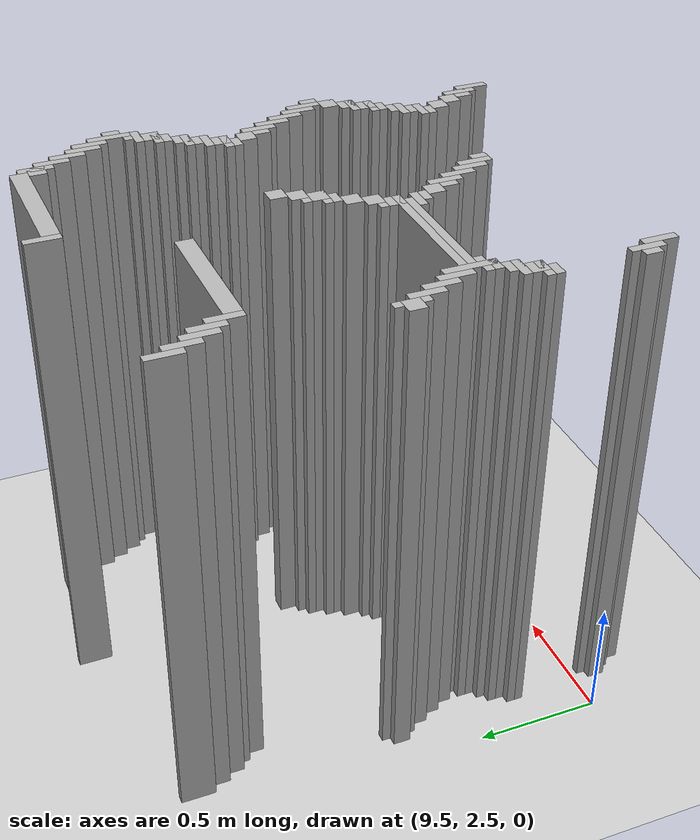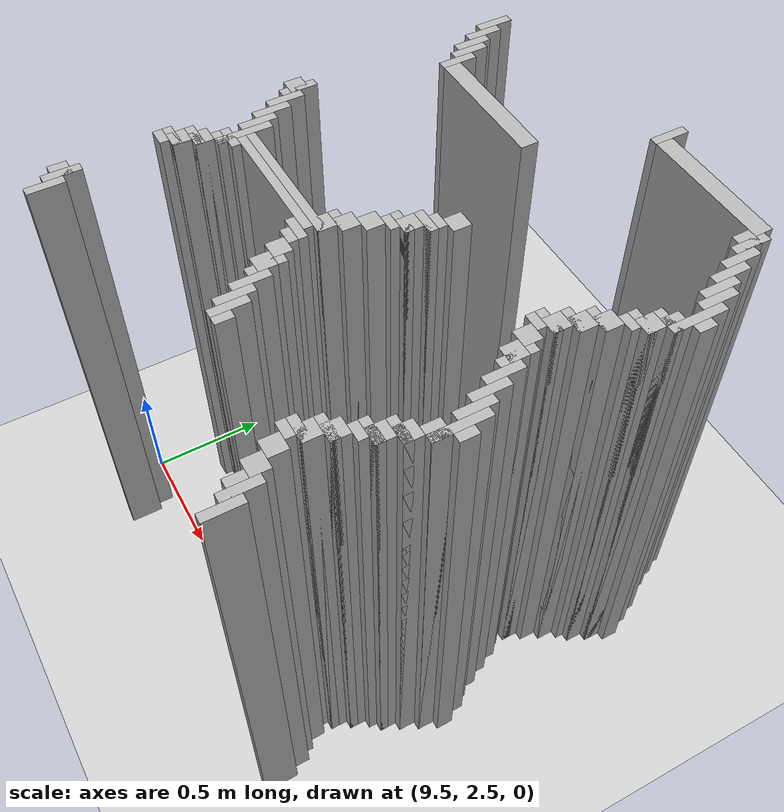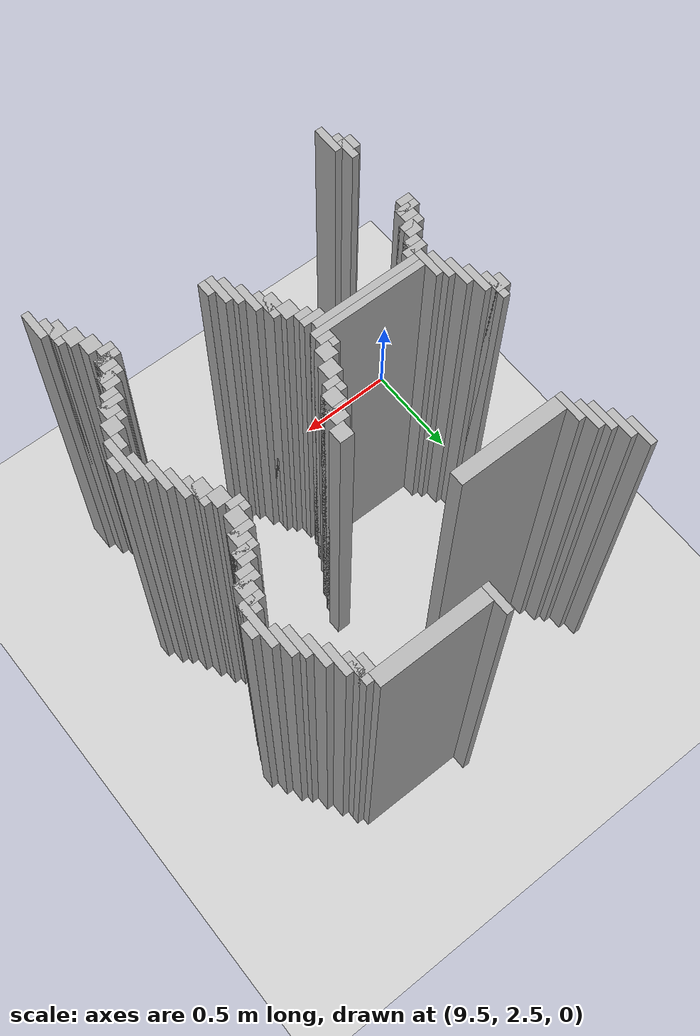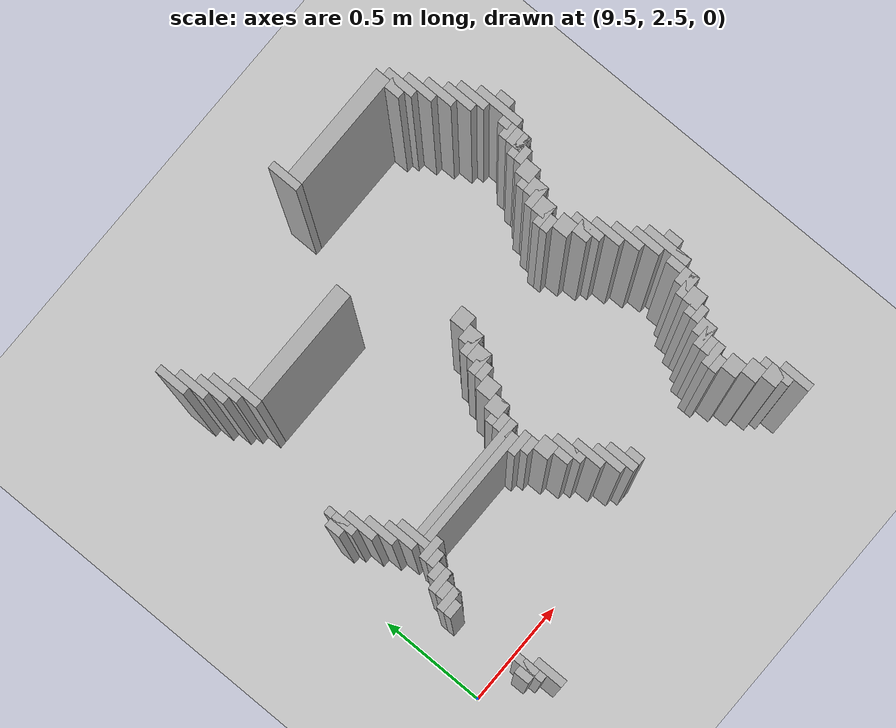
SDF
<sdf version="1.6">
 <world name="slam_world">
  <model name="ground_plane">
   <static>true</static>
   <link name="link">
    <collision name="collision">
     <geometry><plane><normal>0 0 1</normal><size>100 100</size></plane></geometry>
    </collision>
    <visual name="visual">
     <geometry><plane><normal>0 0 1</normal><size>100 100</size></plane></geometry>
     <material>
      <ambient>0.8 0.8 0.8 1</ambient>
      <diffuse>0.8 0.8 0.8 1</diffuse>
      <specular>0.8 0.8 0.8 1</specular>
     </material>
    </visual>
   </link>
  </model>
  <model name="wall_4325">
   <static>true</static>
   <pose>10.52784222737819 4.315545243619489 1.0 0 0 0</pose>
   <link name="link">
    <collision name="collision">
     <geometry><box><size>0.03480278422273782 0.13921113689095127 2.0</size></box></geometry>
    </collision>
    <visual name="visual">
     <geometry><box><size>0.03480278422273782 0.13921113689095127 2.0</size></box></geometry>
     <material><ambient>0.5 0.5 0.5 1</ambient><diffuse>0.7 0.7 0.7 1</diffuse></material>
    </visual>
   </link>
  </model>
  <model name="wall_4341">
   <static>true</static>
   <pose>10.806264501160092 4.280742459396752 1.0 0 0 0</pose>
   <link name="link">
    <collision name="collision">
     <geometry><box><size>0.5220417633410672 0.06960556844547564 2.0</size></box></geometry>
    </collision>
    <visual name="visual">
     <geometry><box><size>0.5220417633410672 0.06960556844547564 2.0</size></box></geometry>
     <material><ambient>0.5 0.5 0.5 1</ambient><diffuse>0.7 0.7 0.7 1</diffuse></material>
    </visual>
   </link>
  </model>
  <model name="wall_4353">
   <static>true</static>
   <pose>11.084686774941995 4.211136890951276 1.0 0 0 0</pose>
   <link name="link">
    <collision name="collision">
     <geometry><box><size>0.03480278422273782 0.13921113689095127 2.0</size></box></geometry>
    </collision>
    <visual name="visual">
     <geometry><box><size>0.03480278422273782 0.13921113689095127 2.0</size></box></geometry>
     <material><ambient>0.5 0.5 0.5 1</ambient><diffuse>0.7 0.7 0.7 1</diffuse></material>
    </visual>
   </link>
  </model>
  <model name="wall_4368">
   <static>true</static>
   <pose>11.067285382830626 4.211136890951276 1.0 0 0 0</pose>
   <link name="link">
    <collision name="collision">
     <geometry><box><size>0.06960556844547564 0.06960556844547564 2.0</size></box></geometry>
    </collision>
    <visual name="visual">
     <geometry><box><size>0.06960556844547564 0.06960556844547564 2.0</size></box></geometry>
     <material><ambient>0.5 0.5 0.5 1</ambient><diffuse>0.7 0.7 0.7 1</diffuse></material>
    </visual>
   </link>
  </model>
  <model name="wall_4383">
   <static>true</static>
   <pose>9.657772621809745 4.1415313225058 1.0 0 0 0</pose>
   <link name="link">
    <collision name="collision">
     <geometry><box><size>0.03480278422273782 0.13921113689095127 2.0</size></box></geometry>
    </collision>
    <visual name="visual">
     <geometry><box><size>0.03480278422273782 0.13921113689095127 2.0</size></box></geometry>
     <material><ambient>0.5 0.5 0.5 1</ambient><diffuse>0.7 0.7 0.7 1</diffuse></material>
    </visual>
   </link>
  </model>
  <model name="wall_4384">
   <static>true</static>
   <pose>11.119489559164732 4.1415313225058 1.0 0 0 0</pose>
   <link name="link">
    <collision name="collision">
     <geometry><box><size>0.03480278422273782 0.13921113689095127 2.0</size></box></geometry>
    </collision>
    <visual name="visual">
     <geometry><box><size>0.03480278422273782 0.13921113689095127 2.0</size></box></geometry>
     <material><ambient>0.5 0.5 0.5 1</ambient><diffuse>0.7 0.7 0.7 1</diffuse></material>
    </visual>
   </link>
  </model>
  <model name="wall_4412">
   <static>true</static>
   <pose>9.692575406032482 4.071925754060325 1.0 0 0 0</pose>
   <link name="link">
    <collision name="collision">
     <geometry><box><size>0.03480278422273782 0.13921113689095127 2.0</size></box></geometry>
    </collision>
    <visual name="visual">
     <geometry><box><size>0.03480278422273782 0.13921113689095127 2.0</size></box></geometry>
     <material><ambient>0.5 0.5 0.5 1</ambient><diffuse>0.7 0.7 0.7 1</diffuse></material>
    </visual>
   </link>
  </model>
  <model name="wall_4413">
   <static>true</static>
   <pose>11.154292343387471 4.071925754060325 1.0 0 0 0</pose>
   <link name="link">
    <collision name="collision">
     <geometry><box><size>0.03480278422273782 0.13921113689095127 2.0</size></box></geometry>
    </collision>
    <visual name="visual">
     <geometry><box><size>0.03480278422273782 0.13921113689095127 2.0</size></box></geometry>
     <material><ambient>0.5 0.5 0.5 1</ambient><diffuse>0.7 0.7 0.7 1</diffuse></material>
    </visual>
   </link>
  </model>
  <model name="wall_4428">
   <static>true</static>
   <pose>9.72737819025522 4.002320185614849 1.0 0 0 0</pose>
   <link name="link">
    <collision name="collision">
     <geometry><box><size>0.03480278422273782 0.13921113689095127 2.0</size></box></geometry>
    </collision>
    <visual name="visual">
     <geometry><box><size>0.03480278422273782 0.13921113689095127 2.0</size></box></geometry>
     <material><ambient>0.5 0.5 0.5 1</ambient><diffuse>0.7 0.7 0.7 1</diffuse></material>
    </visual>
   </link>
  </model>
  <model name="wall_4429">
   <static>true</static>
   <pose>11.189095127610209 4.002320185614849 1.0 0 0 0</pose>
   <link name="link">
    <collision name="collision">
     <geometry><box><size>0.03480278422273782 0.13921113689095127 2.0</size></box></geometry>
    </collision>
    <visual name="visual">
     <geometry><box><size>0.03480278422273782 0.13921113689095127 2.0</size></box></geometry>
     <material><ambient>0.5 0.5 0.5 1</ambient><diffuse>0.7 0.7 0.7 1</diffuse></material>
    </visual>
   </link>
  </model>
  <model name="wall_4444">
   <static>true</static>
   <pose>9.762180974477959 3.967517401392111 1.0 0 0 0</pose>
   <link name="link">
    <collision name="collision">
     <geometry><box><size>0.03480278422273782 0.13921113689095127 2.0</size></box></geometry>
    </collision>
    <visual name="visual">
     <geometry><box><size>0.03480278422273782 0.13921113689095127 2.0</size></box></geometry>
     <material><ambient>0.5 0.5 0.5 1</ambient><diffuse>0.7 0.7 0.7 1</diffuse></material>
    </visual>
   </link>
  </model>
  <model name="wall_4445">
   <static>true</static>
   <pose>11.223897911832946 3.967517401392111 1.0 0 0 0</pose>
   <link name="link">
    <collision name="collision">
     <geometry><box><size>0.03480278422273782 0.13921113689095127 2.0</size></box></geometry>
    </collision>
    <visual name="visual">
     <geometry><box><size>0.03480278422273782 0.13921113689095127 2.0</size></box></geometry>
     <material><ambient>0.5 0.5 0.5 1</ambient><diffuse>0.7 0.7 0.7 1</diffuse></material>
    </visual>
   </link>
  </model>
  <model name="wall_4469">
   <static>true</static>
   <pose>9.796983758700696 3.897911832946636 1.0 0 0 0</pose>
   <link name="link">
    <collision name="collision">
     <geometry><box><size>0.03480278422273782 0.13921113689095127 2.0</size></box></geometry>
    </collision>
    <visual name="visual">
     <geometry><box><size>0.03480278422273782 0.13921113689095127 2.0</size></box></geometry>
     <material><ambient>0.5 0.5 0.5 1</ambient><diffuse>0.7 0.7 0.7 1</diffuse></material>
    </visual>
   </link>
  </model>
  <model name="wall_4470">
   <static>true</static>
   <pose>11.258700696055683 3.863109048723898 1.0 0 0 0</pose>
   <link name="link">
    <collision name="collision">
     <geometry><box><size>0.03480278422273782 0.2088167053364269 2.0</size></box></geometry>
    </collision>
    <visual name="visual">
     <geometry><box><size>0.03480278422273782 0.2088167053364269 2.0</size></box></geometry>
     <material><ambient>0.5 0.5 0.5 1</ambient><diffuse>0.7 0.7 0.7 1</diffuse></material>
    </visual>
   </link>
  </model>
  <model name="wall_4493">
   <static>true</static>
   <pose>10.075406032482599 3.863109048723898 1.0 0 0 0</pose>
   <link name="link">
    <collision name="collision">
     <geometry><box><size>0.5220417633410672 0.06960556844547564 2.0</size></box></geometry>
    </collision>
    <visual name="visual">
     <geometry><box><size>0.5220417633410672 0.06960556844547564 2.0</size></box></geometry>
     <material><ambient>0.5 0.5 0.5 1</ambient><diffuse>0.7 0.7 0.7 1</diffuse></material>
    </visual>
   </link>
  </model>
  <model name="wall_4494">
   <static>true</static>
   <pose>11.293503480278423 3.863109048723898 1.0 0 0 0</pose>
   <link name="link">
    <collision name="collision">
     <geometry><box><size>0.03480278422273782 0.06960556844547564 2.0</size></box></geometry>
    </collision>
    <visual name="visual">
     <geometry><box><size>0.03480278422273782 0.06960556844547564 2.0</size></box></geometry>
     <material><ambient>0.5 0.5 0.5 1</ambient><diffuse>0.7 0.7 0.7 1</diffuse></material>
    </visual>
   </link>
  </model>
  <model name="wall_4506">
   <static>true</static>
   <pose>11.241299303944315 3.793503480278422 1.0 0 0 0</pose>
   <link name="link">
    <collision name="collision">
     <geometry><box><size>0.06960556844547564 0.06960556844547564 2.0</size></box></geometry>
    </collision>
    <visual name="visual">
     <geometry><box><size>0.06960556844547564 0.06960556844547564 2.0</size></box></geometry>
     <material><ambient>0.5 0.5 0.5 1</ambient><diffuse>0.7 0.7 0.7 1</diffuse></material>
    </visual>
   </link>
  </model>
  <model name="wall_4517">
   <static>true</static>
   <pose>11.223897911832946 3.776102088167053 1.0 0 0 0</pose>
   <link name="link">
    <collision name="collision">
     <geometry><box><size>0.10440835266821345 0.03480278422273782 2.0</size></box></geometry>
    </collision>
    <visual name="visual">
     <geometry><box><size>0.10440835266821345 0.03480278422273782 2.0</size></box></geometry>
     <material><ambient>0.5 0.5 0.5 1</ambient><diffuse>0.7 0.7 0.7 1</diffuse></material>
    </visual>
   </link>
  </model>
  <model name="wall_4528">
   <static>true</static>
   <pose>11.206496519721577 3.7238979118329465 1.0 0 0 0</pose>
   <link name="link">
    <collision name="collision">
     <geometry><box><size>0.06960556844547564 0.06960556844547564 2.0</size></box></geometry>
    </collision>
    <visual name="visual">
     <geometry><box><size>0.06960556844547564 0.06960556844547564 2.0</size></box></geometry>
     <material><ambient>0.5 0.5 0.5 1</ambient><diffuse>0.7 0.7 0.7 1</diffuse></material>
    </visual>
   </link>
  </model>
  <model name="wall_4539">
   <static>true</static>
   <pose>11.189095127610209 3.706496519721578 1.0 0 0 0</pose>
   <link name="link">
    <collision name="collision">
     <geometry><box><size>0.10440835266821345 0.03480278422273782 2.0</size></box></geometry>
    </collision>
    <visual name="visual">
     <geometry><box><size>0.10440835266821345 0.03480278422273782 2.0</size></box></geometry>
     <material><ambient>0.5 0.5 0.5 1</ambient><diffuse>0.7 0.7 0.7 1</diffuse></material>
    </visual>
   </link>
  </model>
  <model name="wall_4546">
   <static>true</static>
   <pose>11.17169373549884 3.67169373549884 1.0 0 0 0</pose>
   <link name="link">
    <collision name="collision">
     <geometry><box><size>0.06960556844547564 0.03480278422273782 2.0</size></box></geometry>
    </collision>
    <visual name="visual">
     <geometry><box><size>0.06960556844547564 0.03480278422273782 2.0</size></box></geometry>
     <material><ambient>0.5 0.5 0.5 1</ambient><diffuse>0.7 0.7 0.7 1</diffuse></material>
    </visual>
   </link>
  </model>
  <model name="wall_4554">
   <static>true</static>
   <pose>11.1368909512761 3.619489559164733 1.0 0 0 0</pose>
   <link name="link">
    <collision name="collision">
     <geometry><box><size>0.06960556844547564 0.06960556844547564 2.0</size></box></geometry>
    </collision>
    <visual name="visual">
     <geometry><box><size>0.06960556844547564 0.06960556844547564 2.0</size></box></geometry>
     <material><ambient>0.5 0.5 0.5 1</ambient><diffuse>0.7 0.7 0.7 1</diffuse></material>
    </visual>
   </link>
  </model>
  <model name="wall_4561">
   <static>true</static>
   <pose>11.119489559164732 3.602088167053364 1.0 0 0 0</pose>
   <link name="link">
    <collision name="collision">
     <geometry><box><size>0.10440835266821345 0.03480278422273782 2.0</size></box></geometry>
    </collision>
    <visual name="visual">
     <geometry><box><size>0.10440835266821345 0.03480278422273782 2.0</size></box></geometry>
     <material><ambient>0.5 0.5 0.5 1</ambient><diffuse>0.7 0.7 0.7 1</diffuse></material>
    </visual>
   </link>
  </model>
  <model name="wall_4569">
   <static>true</static>
   <pose>11.102088167053363 3.549883990719257 1.0 0 0 0</pose>
   <link name="link">
    <collision name="collision">
     <geometry><box><size>0.06960556844547564 0.06960556844547564 2.0</size></box></geometry>
    </collision>
    <visual name="visual">
     <geometry><box><size>0.06960556844547564 0.06960556844547564 2.0</size></box></geometry>
     <material><ambient>0.5 0.5 0.5 1</ambient><diffuse>0.7 0.7 0.7 1</diffuse></material>
    </visual>
   </link>
  </model>
  <model name="wall_4580">
   <static>true</static>
   <pose>11.084686774941995 3.5324825986078885 1.0 0 0 0</pose>
   <link name="link">
    <collision name="collision">
     <geometry><box><size>0.10440835266821345 0.03480278422273782 2.0</size></box></geometry>
    </collision>
    <visual name="visual">
     <geometry><box><size>0.10440835266821345 0.03480278422273782 2.0</size></box></geometry>
     <material><ambient>0.5 0.5 0.5 1</ambient><diffuse>0.7 0.7 0.7 1</diffuse></material>
    </visual>
   </link>
  </model>
  <model name="wall_4587">
   <static>true</static>
   <pose>11.067285382830626 3.480278422273782 1.0 0 0 0</pose>
   <link name="link">
    <collision name="collision">
     <geometry><box><size>0.06960556844547564 0.06960556844547564 2.0</size></box></geometry>
    </collision>
    <visual name="visual">
     <geometry><box><size>0.06960556844547564 0.06960556844547564 2.0</size></box></geometry>
     <material><ambient>0.5 0.5 0.5 1</ambient><diffuse>0.7 0.7 0.7 1</diffuse></material>
    </visual>
   </link>
  </model>
  <model name="wall_4598">
   <static>true</static>
   <pose>10.54524361948956 3.445475638051044 1.0 0 0 0</pose>
   <link name="link">
    <collision name="collision">
     <geometry><box><size>0.06960556844547564 0.06960556844547564 2.0</size></box></geometry>
    </collision>
    <visual name="visual">
     <geometry><box><size>0.06960556844547564 0.06960556844547564 2.0</size></box></geometry>
     <material><ambient>0.5 0.5 0.5 1</ambient><diffuse>0.7 0.7 0.7 1</diffuse></material>
    </visual>
   </link>
  </model>
  <model name="wall_4599">
   <static>true</static>
   <pose>11.049883990719257 3.4628770301624128 1.0 0 0 0</pose>
   <link name="link">
    <collision name="collision">
     <geometry><box><size>0.10440835266821345 0.03480278422273782 2.0</size></box></geometry>
    </collision>
    <visual name="visual">
     <geometry><box><size>0.10440835266821345 0.03480278422273782 2.0</size></box></geometry>
     <material><ambient>0.5 0.5 0.5 1</ambient><diffuse>0.7 0.7 0.7 1</diffuse></material>
    </visual>
   </link>
  </model>
  <model name="wall_4606">
   <static>true</static>
   <pose>11.032482598607888 3.428074245939675 1.0 0 0 0</pose>
   <link name="link">
    <collision name="collision">
     <geometry><box><size>0.06960556844547564 0.03480278422273782 2.0</size></box></geometry>
    </collision>
    <visual name="visual">
     <geometry><box><size>0.06960556844547564 0.03480278422273782 2.0</size></box></geometry>
     <material><ambient>0.5 0.5 0.5 1</ambient><diffuse>0.7 0.7 0.7 1</diffuse></material>
    </visual>
   </link>
  </model>
  <model name="wall_4619">
   <static>true</static>
   <pose>10.51044083526682 3.3758700696055683 1.0 0 0 0</pose>
   <link name="link">
    <collision name="collision">
     <geometry><box><size>0.06960556844547564 0.06960556844547564 2.0</size></box></geometry>
    </collision>
    <visual name="visual">
     <geometry><box><size>0.06960556844547564 0.06960556844547564 2.0</size></box></geometry>
     <material><ambient>0.5 0.5 0.5 1</ambient><diffuse>0.7 0.7 0.7 1</diffuse></material>
    </visual>
   </link>
  </model>
  <model name="wall_4620">
   <static>true</static>
   <pose>11.067285382830626 3.3758700696055683 1.0 0 0 0</pose>
   <link name="link">
    <collision name="collision">
     <geometry><box><size>0.06960556844547564 0.06960556844547564 2.0</size></box></geometry>
    </collision>
    <visual name="visual">
     <geometry><box><size>0.06960556844547564 0.06960556844547564 2.0</size></box></geometry>
     <material><ambient>0.5 0.5 0.5 1</ambient><diffuse>0.7 0.7 0.7 1</diffuse></material>
    </visual>
   </link>
  </model>
  <model name="wall_4635">
   <static>true</static>
   <pose>9.657772621809745 3.3062645011600926 1.0 0 0 0</pose>
   <link name="link">
    <collision name="collision">
     <geometry><box><size>0.03480278422273782 0.13921113689095127 2.0</size></box></geometry>
    </collision>
    <visual name="visual">
     <geometry><box><size>0.03480278422273782 0.13921113689095127 2.0</size></box></geometry>
     <material><ambient>0.5 0.5 0.5 1</ambient><diffuse>0.7 0.7 0.7 1</diffuse></material>
    </visual>
   </link>
  </model>
  <model name="wall_4636">
   <static>true</static>
   <pose>10.493039443155451 3.358468677494199 1.0 0 0 0</pose>
   <link name="link">
    <collision name="collision">
     <geometry><box><size>0.10440835266821345 0.03480278422273782 2.0</size></box></geometry>
    </collision>
    <visual name="visual">
     <geometry><box><size>0.10440835266821345 0.03480278422273782 2.0</size></box></geometry>
     <material><ambient>0.5 0.5 0.5 1</ambient><diffuse>0.7 0.7 0.7 1</diffuse></material>
    </visual>
   </link>
  </model>
  <model name="wall_4637">
   <static>true</static>
   <pose>11.119489559164732 3.3062645011600926 1.0 0 0 0</pose>
   <link name="link">
    <collision name="collision">
     <geometry><box><size>0.03480278422273782 0.13921113689095127 2.0</size></box></geometry>
    </collision>
    <visual name="visual">
     <geometry><box><size>0.03480278422273782 0.13921113689095127 2.0</size></box></geometry>
     <material><ambient>0.5 0.5 0.5 1</ambient><diffuse>0.7 0.7 0.7 1</diffuse></material>
    </visual>
   </link>
  </model>
  <model name="wall_4652">
   <static>true</static>
   <pose>9.640371229698376 3.3062645011600926 1.0 0 0 0</pose>
   <link name="link">
    <collision name="collision">
     <geometry><box><size>0.06960556844547564 0.06960556844547564 2.0</size></box></geometry>
    </collision>
    <visual name="visual">
     <geometry><box><size>0.06960556844547564 0.06960556844547564 2.0</size></box></geometry>
     <material><ambient>0.5 0.5 0.5 1</ambient><diffuse>0.7 0.7 0.7 1</diffuse></material>
    </visual>
   </link>
  </model>
  <model name="wall_4653">
   <static>true</static>
   <pose>10.475638051044083 3.3062645011600926 1.0 0 0 0</pose>
   <link name="link">
    <collision name="collision">
     <geometry><box><size>0.06960556844547564 0.06960556844547564 2.0</size></box></geometry>
    </collision>
    <visual name="visual">
     <geometry><box><size>0.06960556844547564 0.06960556844547564 2.0</size></box></geometry>
     <material><ambient>0.5 0.5 0.5 1</ambient><diffuse>0.7 0.7 0.7 1</diffuse></material>
    </visual>
   </link>
  </model>
  <model name="wall_4654">
   <static>true</static>
   <pose>11.102088167053363 3.3062645011600926 1.0 0 0 0</pose>
   <link name="link">
    <collision name="collision">
     <geometry><box><size>0.06960556844547564 0.06960556844547564 2.0</size></box></geometry>
    </collision>
    <visual name="visual">
     <geometry><box><size>0.06960556844547564 0.06960556844547564 2.0</size></box></geometry>
     <material><ambient>0.5 0.5 0.5 1</ambient><diffuse>0.7 0.7 0.7 1</diffuse></material>
    </visual>
   </link>
  </model>
  <model name="wall_4669">
   <static>true</static>
   <pose>9.692575406032482 3.236658932714617 1.0 0 0 0</pose>
   <link name="link">
    <collision name="collision">
     <geometry><box><size>0.03480278422273782 0.13921113689095127 2.0</size></box></geometry>
    </collision>
    <visual name="visual">
     <geometry><box><size>0.03480278422273782 0.13921113689095127 2.0</size></box></geometry>
     <material><ambient>0.5 0.5 0.5 1</ambient><diffuse>0.7 0.7 0.7 1</diffuse></material>
    </visual>
   </link>
  </model>
  <model name="wall_4670">
   <static>true</static>
   <pose>10.458236658932714 3.288863109048724 1.0 0 0 0</pose>
   <link name="link">
    <collision name="collision">
     <geometry><box><size>0.10440835266821345 0.03480278422273782 2.0</size></box></geometry>
    </collision>
    <visual name="visual">
     <geometry><box><size>0.10440835266821345 0.03480278422273782 2.0</size></box></geometry>
     <material><ambient>0.5 0.5 0.5 1</ambient><diffuse>0.7 0.7 0.7 1</diffuse></material>
    </visual>
   </link>
  </model>
  <model name="wall_4671">
   <static>true</static>
   <pose>11.154292343387471 3.236658932714617 1.0 0 0 0</pose>
   <link name="link">
    <collision name="collision">
     <geometry><box><size>0.03480278422273782 0.13921113689095127 2.0</size></box></geometry>
    </collision>
    <visual name="visual">
     <geometry><box><size>0.03480278422273782 0.13921113689095127 2.0</size></box></geometry>
     <material><ambient>0.5 0.5 0.5 1</ambient><diffuse>0.7 0.7 0.7 1</diffuse></material>
    </visual>
   </link>
  </model>
  <model name="wall_4680">
   <static>true</static>
   <pose>10.440835266821345 3.254060324825986 1.0 0 0 0</pose>
   <link name="link">
    <collision name="collision">
     <geometry><box><size>0.06960556844547564 0.03480278422273782 2.0</size></box></geometry>
    </collision>
    <visual name="visual">
     <geometry><box><size>0.06960556844547564 0.03480278422273782 2.0</size></box></geometry>
     <material><ambient>0.5 0.5 0.5 1</ambient><diffuse>0.7 0.7 0.7 1</diffuse></material>
    </visual>
   </link>
  </model>
  <model name="wall_4694">
   <static>true</static>
   <pose>9.72737819025522 3.167053364269141 1.0 0 0 0</pose>
   <link name="link">
    <collision name="collision">
     <geometry><box><size>0.03480278422273782 0.13921113689095127 2.0</size></box></geometry>
    </collision>
    <visual name="visual">
     <geometry><box><size>0.03480278422273782 0.13921113689095127 2.0</size></box></geometry>
     <material><ambient>0.5 0.5 0.5 1</ambient><diffuse>0.7 0.7 0.7 1</diffuse></material>
    </visual>
   </link>
  </model>
  <model name="wall_4695">
   <static>true</static>
   <pose>10.406032482598608 3.201856148491879 1.0 0 0 0</pose>
   <link name="link">
    <collision name="collision">
     <geometry><box><size>0.06960556844547564 0.06960556844547564 2.0</size></box></geometry>
    </collision>
    <visual name="visual">
     <geometry><box><size>0.06960556844547564 0.06960556844547564 2.0</size></box></geometry>
     <material><ambient>0.5 0.5 0.5 1</ambient><diffuse>0.7 0.7 0.7 1</diffuse></material>
    </visual>
   </link>
  </model>
  <model name="wall_4696">
   <static>true</static>
   <pose>11.189095127610209 3.167053364269141 1.0 0 0 0</pose>
   <link name="link">
    <collision name="collision">
     <geometry><box><size>0.03480278422273782 0.13921113689095127 2.0</size></box></geometry>
    </collision>
    <visual name="visual">
     <geometry><box><size>0.03480278422273782 0.13921113689095127 2.0</size></box></geometry>
     <material><ambient>0.5 0.5 0.5 1</ambient><diffuse>0.7 0.7 0.7 1</diffuse></material>
    </visual>
   </link>
  </model>
  <model name="wall_4711">
   <static>true</static>
   <pose>9.762180974477959 3.097447795823666 1.0 0 0 0</pose>
   <link name="link">
    <collision name="collision">
     <geometry><box><size>0.03480278422273782 0.13921113689095127 2.0</size></box></geometry>
    </collision>
    <visual name="visual">
     <geometry><box><size>0.03480278422273782 0.13921113689095127 2.0</size></box></geometry>
     <material><ambient>0.5 0.5 0.5 1</ambient><diffuse>0.7 0.7 0.7 1</diffuse></material>
    </visual>
   </link>
  </model>
  <model name="wall_4712">
   <static>true</static>
   <pose>10.37122969837587 3.1322505800464038 1.0 0 0 0</pose>
   <link name="link">
    <collision name="collision">
     <geometry><box><size>0.06960556844547564 0.06960556844547564 2.0</size></box></geometry>
    </collision>
    <visual name="visual">
     <geometry><box><size>0.06960556844547564 0.06960556844547564 2.0</size></box></geometry>
     <material><ambient>0.5 0.5 0.5 1</ambient><diffuse>0.7 0.7 0.7 1</diffuse></material>
    </visual>
   </link>
  </model>
  <model name="wall_4713">
   <static>true</static>
   <pose>11.223897911832946 3.097447795823666 1.0 0 0 0</pose>
   <link name="link">
    <collision name="collision">
     <geometry><box><size>0.03480278422273782 0.13921113689095127 2.0</size></box></geometry>
    </collision>
    <visual name="visual">
     <geometry><box><size>0.03480278422273782 0.13921113689095127 2.0</size></box></geometry>
     <material><ambient>0.5 0.5 0.5 1</ambient><diffuse>0.7 0.7 0.7 1</diffuse></material>
    </visual>
   </link>
  </model>
  <model name="wall_4728">
   <static>true</static>
   <pose>9.796983758700696 3.02784222737819 1.0 0 0 0</pose>
   <link name="link">
    <collision name="collision">
     <geometry><box><size>0.03480278422273782 0.2088167053364269 2.0</size></box></geometry>
    </collision>
    <visual name="visual">
     <geometry><box><size>0.03480278422273782 0.2088167053364269 2.0</size></box></geometry>
     <material><ambient>0.5 0.5 0.5 1</ambient><diffuse>0.7 0.7 0.7 1</diffuse></material>
    </visual>
   </link>
  </model>
  <model name="wall_4729">
   <static>true</static>
   <pose>10.3538283062645 3.1148491879350346 1.0 0 0 0</pose>
   <link name="link">
    <collision name="collision">
     <geometry><box><size>0.10440835266821345 0.03480278422273782 2.0</size></box></geometry>
    </collision>
    <visual name="visual">
     <geometry><box><size>0.10440835266821345 0.03480278422273782 2.0</size></box></geometry>
     <material><ambient>0.5 0.5 0.5 1</ambient><diffuse>0.7 0.7 0.7 1</diffuse></material>
    </visual>
   </link>
  </model>
  <model name="wall_4730">
   <static>true</static>
   <pose>11.258700696055683 3.02784222737819 1.0 0 0 0</pose>
   <link name="link">
    <collision name="collision">
     <geometry><box><size>0.03480278422273782 0.2088167053364269 2.0</size></box></geometry>
    </collision>
    <visual name="visual">
     <geometry><box><size>0.03480278422273782 0.2088167053364269 2.0</size></box></geometry>
     <material><ambient>0.5 0.5 0.5 1</ambient><diffuse>0.7 0.7 0.7 1</diffuse></material>
    </visual>
   </link>
  </model>
  <model name="wall_4739">
   <static>true</static>
   <pose>10.336426914153131 3.062645011600928 1.0 0 0 0</pose>
   <link name="link">
    <collision name="collision">
     <geometry><box><size>0.06960556844547564 0.06960556844547564 2.0</size></box></geometry>
    </collision>
    <visual name="visual">
     <geometry><box><size>0.06960556844547564 0.06960556844547564 2.0</size></box></geometry>
     <material><ambient>0.5 0.5 0.5 1</ambient><diffuse>0.7 0.7 0.7 1</diffuse></material>
    </visual>
   </link>
  </model>
  <model name="wall_4751">
   <static>true</static>
   <pose>10.092807424593968 3.045243619489559 1.0 0 0 0</pose>
   <link name="link">
    <collision name="collision">
     <geometry><box><size>0.5568445475638051 0.03480278422273782 2.0</size></box></geometry>
    </collision>
    <visual name="visual">
     <geometry><box><size>0.5568445475638051 0.03480278422273782 2.0</size></box></geometry>
     <material><ambient>0.5 0.5 0.5 1</ambient><diffuse>0.7 0.7 0.7 1</diffuse></material>
    </visual>
   </link>
  </model>
  <model name="wall_4752">
   <static>true</static>
   <pose>11.293503480278423 3.02784222737819 1.0 0 0 0</pose>
   <link name="link">
    <collision name="collision">
     <geometry><box><size>0.03480278422273782 0.06960556844547564 2.0</size></box></geometry>
    </collision>
    <visual name="visual">
     <geometry><box><size>0.03480278422273782 0.06960556844547564 2.0</size></box></geometry>
     <material><ambient>0.5 0.5 0.5 1</ambient><diffuse>0.7 0.7 0.7 1</diffuse></material>
    </visual>
   </link>
  </model>
  <model name="wall_4760">
   <static>true</static>
   <pose>10.075406032482599 3.010440835266821 1.0 0 0 0</pose>
   <link name="link">
    <collision name="collision">
     <geometry><box><size>0.5220417633410672 0.03480278422273782 2.0</size></box></geometry>
    </collision>
    <visual name="visual">
     <geometry><box><size>0.5220417633410672 0.03480278422273782 2.0</size></box></geometry>
     <material><ambient>0.5 0.5 0.5 1</ambient><diffuse>0.7 0.7 0.7 1</diffuse></material>
    </visual>
   </link>
  </model>
  <model name="wall_4771">
   <static>true</static>
   <pose>9.796983758700696 2.975638051044083 1.0 0 0 0</pose>
   <link name="link">
    <collision name="collision">
     <geometry><box><size>0.10440835266821345 0.03480278422273782 2.0</size></box></geometry>
    </collision>
    <visual name="visual">
     <geometry><box><size>0.10440835266821345 0.03480278422273782 2.0</size></box></geometry>
     <material><ambient>0.5 0.5 0.5 1</ambient><diffuse>0.7 0.7 0.7 1</diffuse></material>
    </visual>
   </link>
  </model>
  <model name="wall_4772">
   <static>true</static>
   <pose>10.319025522041763 2.975638051044083 1.0 0 0 0</pose>
   <link name="link">
    <collision name="collision">
     <geometry><box><size>0.10440835266821345 0.03480278422273782 2.0</size></box></geometry>
    </collision>
    <visual name="visual">
     <geometry><box><size>0.10440835266821345 0.03480278422273782 2.0</size></box></geometry>
     <material><ambient>0.5 0.5 0.5 1</ambient><diffuse>0.7 0.7 0.7 1</diffuse></material>
    </visual>
   </link>
  </model>
  <model name="wall_4773">
   <static>true</static>
   <pose>11.241299303944315 2.9582366589327145 1.0 0 0 0</pose>
   <link name="link">
    <collision name="collision">
     <geometry><box><size>0.06960556844547564 0.06960556844547564 2.0</size></box></geometry>
    </collision>
    <visual name="visual">
     <geometry><box><size>0.06960556844547564 0.06960556844547564 2.0</size></box></geometry>
     <material><ambient>0.5 0.5 0.5 1</ambient><diffuse>0.7 0.7 0.7 1</diffuse></material>
    </visual>
   </link>
  </model>
  <model name="wall_4780">
   <static>true</static>
   <pose>9.779582366589327 2.9408352668213458 1.0 0 0 0</pose>
   <link name="link">
    <collision name="collision">
     <geometry><box><size>0.06960556844547564 0.03480278422273782 2.0</size></box></geometry>
    </collision>
    <visual name="visual">
     <geometry><box><size>0.06960556844547564 0.03480278422273782 2.0</size></box></geometry>
     <material><ambient>0.5 0.5 0.5 1</ambient><diffuse>0.7 0.7 0.7 1</diffuse></material>
    </visual>
   </link>
  </model>
  <model name="wall_4781">
   <static>true</static>
   <pose>10.336426914153131 2.9408352668213458 1.0 0 0 0</pose>
   <link name="link">
    <collision name="collision">
     <geometry><box><size>0.06960556844547564 0.03480278422273782 2.0</size></box></geometry>
    </collision>
    <visual name="visual">
     <geometry><box><size>0.06960556844547564 0.03480278422273782 2.0</size></box></geometry>
     <material><ambient>0.5 0.5 0.5 1</ambient><diffuse>0.7 0.7 0.7 1</diffuse></material>
    </visual>
   </link>
  </model>
  <model name="wall_4791">
   <static>true</static>
   <pose>9.744779582366588 2.8886310904872388 1.0 0 0 0</pose>
   <link name="link">
    <collision name="collision">
     <geometry><box><size>0.06960556844547564 0.06960556844547564 2.0</size></box></geometry>
    </collision>
    <visual name="visual">
     <geometry><box><size>0.06960556844547564 0.06960556844547564 2.0</size></box></geometry>
     <material><ambient>0.5 0.5 0.5 1</ambient><diffuse>0.7 0.7 0.7 1</diffuse></material>
    </visual>
   </link>
  </model>
  <model name="wall_4792">
   <static>true</static>
   <pose>10.37122969837587 2.8886310904872388 1.0 0 0 0</pose>
   <link name="link">
    <collision name="collision">
     <geometry><box><size>0.06960556844547564 0.06960556844547564 2.0</size></box></geometry>
    </collision>
    <visual name="visual">
     <geometry><box><size>0.06960556844547564 0.06960556844547564 2.0</size></box></geometry>
     <material><ambient>0.5 0.5 0.5 1</ambient><diffuse>0.7 0.7 0.7 1</diffuse></material>
    </visual>
   </link>
  </model>
  <model name="wall_4793">
   <static>true</static>
   <pose>11.206496519721577 2.8886310904872388 1.0 0 0 0</pose>
   <link name="link">
    <collision name="collision">
     <geometry><box><size>0.06960556844547564 0.06960556844547564 2.0</size></box></geometry>
    </collision>
    <visual name="visual">
     <geometry><box><size>0.06960556844547564 0.06960556844547564 2.0</size></box></geometry>
     <material><ambient>0.5 0.5 0.5 1</ambient><diffuse>0.7 0.7 0.7 1</diffuse></material>
    </visual>
   </link>
  </model>
  <model name="wall_4804">
   <static>true</static>
   <pose>9.72737819025522 2.87122969837587 1.0 0 0 0</pose>
   <link name="link">
    <collision name="collision">
     <geometry><box><size>0.10440835266821345 0.03480278422273782 2.0</size></box></geometry>
    </collision>
    <visual name="visual">
     <geometry><box><size>0.10440835266821345 0.03480278422273782 2.0</size></box></geometry>
     <material><ambient>0.5 0.5 0.5 1</ambient><diffuse>0.7 0.7 0.7 1</diffuse></material>
    </visual>
   </link>
  </model>
  <model name="wall_4805">
   <static>true</static>
   <pose>10.423433874709977 2.819025522041763 1.0 0 0 0</pose>
   <link name="link">
    <collision name="collision">
     <geometry><box><size>0.03480278422273782 0.13921113689095127 2.0</size></box></geometry>
    </collision>
    <visual name="visual">
     <geometry><box><size>0.03480278422273782 0.13921113689095127 2.0</size></box></geometry>
     <material><ambient>0.5 0.5 0.5 1</ambient><diffuse>0.7 0.7 0.7 1</diffuse></material>
    </visual>
   </link>
  </model>
  <model name="wall_4806">
   <static>true</static>
   <pose>11.189095127610209 2.87122969837587 1.0 0 0 0</pose>
   <link name="link">
    <collision name="collision">
     <geometry><box><size>0.10440835266821345 0.03480278422273782 2.0</size></box></geometry>
    </collision>
    <visual name="visual">
     <geometry><box><size>0.10440835266821345 0.03480278422273782 2.0</size></box></geometry>
     <material><ambient>0.5 0.5 0.5 1</ambient><diffuse>0.7 0.7 0.7 1</diffuse></material>
    </visual>
   </link>
  </model>
  <model name="wall_4817">
   <static>true</static>
   <pose>9.70997679814385 2.819025522041763 1.0 0 0 0</pose>
   <link name="link">
    <collision name="collision">
     <geometry><box><size>0.06960556844547564 0.06960556844547564 2.0</size></box></geometry>
    </collision>
    <visual name="visual">
     <geometry><box><size>0.06960556844547564 0.06960556844547564 2.0</size></box></geometry>
     <material><ambient>0.5 0.5 0.5 1</ambient><diffuse>0.7 0.7 0.7 1</diffuse></material>
    </visual>
   </link>
  </model>
  <model name="wall_4818">
   <static>true</static>
   <pose>10.406032482598608 2.819025522041763 1.0 0 0 0</pose>
   <link name="link">
    <collision name="collision">
     <geometry><box><size>0.06960556844547564 0.06960556844547564 2.0</size></box></geometry>
    </collision>
    <visual name="visual">
     <geometry><box><size>0.06960556844547564 0.06960556844547564 2.0</size></box></geometry>
     <material><ambient>0.5 0.5 0.5 1</ambient><diffuse>0.7 0.7 0.7 1</diffuse></material>
    </visual>
   </link>
  </model>
  <model name="wall_4819">
   <static>true</static>
   <pose>11.17169373549884 2.819025522041763 1.0 0 0 0</pose>
   <link name="link">
    <collision name="collision">
     <geometry><box><size>0.06960556844547564 0.06960556844547564 2.0</size></box></geometry>
    </collision>
    <visual name="visual">
     <geometry><box><size>0.06960556844547564 0.06960556844547564 2.0</size></box></geometry>
     <material><ambient>0.5 0.5 0.5 1</ambient><diffuse>0.7 0.7 0.7 1</diffuse></material>
    </visual>
   </link>
  </model>
  <model name="wall_4830">
   <static>true</static>
   <pose>9.692575406032482 2.8016241299303943 1.0 0 0 0</pose>
   <link name="link">
    <collision name="collision">
     <geometry><box><size>0.10440835266821345 0.03480278422273782 2.0</size></box></geometry>
    </collision>
    <visual name="visual">
     <geometry><box><size>0.10440835266821345 0.03480278422273782 2.0</size></box></geometry>
     <material><ambient>0.5 0.5 0.5 1</ambient><diffuse>0.7 0.7 0.7 1</diffuse></material>
    </visual>
   </link>
  </model>
  <model name="wall_4831">
   <static>true</static>
   <pose>10.458236658932714 2.7494199535962878 1.0 0 0 0</pose>
   <link name="link">
    <collision name="collision">
     <geometry><box><size>0.03480278422273782 0.13921113689095127 2.0</size></box></geometry>
    </collision>
    <visual name="visual">
     <geometry><box><size>0.03480278422273782 0.13921113689095127 2.0</size></box></geometry>
     <material><ambient>0.5 0.5 0.5 1</ambient><diffuse>0.7 0.7 0.7 1</diffuse></material>
    </visual>
   </link>
  </model>
  <model name="wall_4832">
   <static>true</static>
   <pose>11.154292343387471 2.8016241299303943 1.0 0 0 0</pose>
   <link name="link">
    <collision name="collision">
     <geometry><box><size>0.10440835266821345 0.03480278422273782 2.0</size></box></geometry>
    </collision>
    <visual name="visual">
     <geometry><box><size>0.10440835266821345 0.03480278422273782 2.0</size></box></geometry>
     <material><ambient>0.5 0.5 0.5 1</ambient><diffuse>0.7 0.7 0.7 1</diffuse></material>
    </visual>
   </link>
  </model>
  <model name="wall_4838">
   <static>true</static>
   <pose>9.675174013921113 2.7668213457076565 1.0 0 0 0</pose>
   <link name="link">
    <collision name="collision">
     <geometry><box><size>0.06960556844547564 0.03480278422273782 2.0</size></box></geometry>
    </collision>
    <visual name="visual">
     <geometry><box><size>0.06960556844547564 0.03480278422273782 2.0</size></box></geometry>
     <material><ambient>0.5 0.5 0.5 1</ambient><diffuse>0.7 0.7 0.7 1</diffuse></material>
    </visual>
   </link>
  </model>
  <model name="wall_4839">
   <static>true</static>
   <pose>11.1368909512761 2.7668213457076565 1.0 0 0 0</pose>
   <link name="link">
    <collision name="collision">
     <geometry><box><size>0.06960556844547564 0.03480278422273782 2.0</size></box></geometry>
    </collision>
    <visual name="visual">
     <geometry><box><size>0.06960556844547564 0.03480278422273782 2.0</size></box></geometry>
     <material><ambient>0.5 0.5 0.5 1</ambient><diffuse>0.7 0.7 0.7 1</diffuse></material>
    </visual>
   </link>
  </model>
  <model name="wall_4848">
   <static>true</static>
   <pose>10.493039443155451 2.679814385150812 1.0 0 0 0</pose>
   <link name="link">
    <collision name="collision">
     <geometry><box><size>0.03480278422273782 0.13921113689095127 2.0</size></box></geometry>
    </collision>
    <visual name="visual">
     <geometry><box><size>0.03480278422273782 0.13921113689095127 2.0</size></box></geometry>
     <material><ambient>0.5 0.5 0.5 1</ambient><diffuse>0.7 0.7 0.7 1</diffuse></material>
    </visual>
   </link>
  </model>
  <model name="wall_4849">
   <static>true</static>
   <pose>11.102088167053363 2.71461716937355 1.0 0 0 0</pose>
   <link name="link">
    <collision name="collision">
     <geometry><box><size>0.06960556844547564 0.06960556844547564 2.0</size></box></geometry>
    </collision>
    <visual name="visual">
     <geometry><box><size>0.06960556844547564 0.06960556844547564 2.0</size></box></geometry>
     <material><ambient>0.5 0.5 0.5 1</ambient><diffuse>0.7 0.7 0.7 1</diffuse></material>
    </visual>
   </link>
  </model>
  <model name="wall_4861">
   <static>true</static>
   <pose>10.52784222737819 2.645011600928074 1.0 0 0 0</pose>
   <link name="link">
    <collision name="collision">
     <geometry><box><size>0.03480278422273782 0.13921113689095127 2.0</size></box></geometry>
    </collision>
    <visual name="visual">
     <geometry><box><size>0.03480278422273782 0.13921113689095127 2.0</size></box></geometry>
     <material><ambient>0.5 0.5 0.5 1</ambient><diffuse>0.7 0.7 0.7 1</diffuse></material>
    </visual>
   </link>
  </model>
  <model name="wall_4862">
   <static>true</static>
   <pose>11.084686774941995 2.6972157772621808 1.0 0 0 0</pose>
   <link name="link">
    <collision name="collision">
     <geometry><box><size>0.10440835266821345 0.03480278422273782 2.0</size></box></geometry>
    </collision>
    <visual name="visual">
     <geometry><box><size>0.10440835266821345 0.03480278422273782 2.0</size></box></geometry>
     <material><ambient>0.5 0.5 0.5 1</ambient><diffuse>0.7 0.7 0.7 1</diffuse></material>
    </visual>
   </link>
  </model>
  <model name="wall_4869">
   <static>true</static>
   <pose>11.067285382830626 2.645011600928074 1.0 0 0 0</pose>
   <link name="link">
    <collision name="collision">
     <geometry><box><size>0.06960556844547564 0.06960556844547564 2.0</size></box></geometry>
    </collision>
    <visual name="visual">
     <geometry><box><size>0.06960556844547564 0.06960556844547564 2.0</size></box></geometry>
     <material><ambient>0.5 0.5 0.5 1</ambient><diffuse>0.7 0.7 0.7 1</diffuse></material>
    </visual>
   </link>
  </model>
  <model name="wall_4879">
   <static>true</static>
   <pose>10.562645011600928 2.6102088167053363 1.0 0 0 0</pose>
   <link name="link">
    <collision name="collision">
     <geometry><box><size>0.03480278422273782 0.06960556844547564 2.0</size></box></geometry>
    </collision>
    <visual name="visual">
     <geometry><box><size>0.03480278422273782 0.06960556844547564 2.0</size></box></geometry>
     <material><ambient>0.5 0.5 0.5 1</ambient><diffuse>0.7 0.7 0.7 1</diffuse></material>
    </visual>
   </link>
  </model>
  <model name="wall_4880">
   <static>true</static>
   <pose>11.049883990719257 2.627610208816705 1.0 0 0 0</pose>
   <link name="link">
    <collision name="collision">
     <geometry><box><size>0.10440835266821345 0.03480278422273782 2.0</size></box></geometry>
    </collision>
    <visual name="visual">
     <geometry><box><size>0.10440835266821345 0.03480278422273782 2.0</size></box></geometry>
     <material><ambient>0.5 0.5 0.5 1</ambient><diffuse>0.7 0.7 0.7 1</diffuse></material>
    </visual>
   </link>
  </model>
  <model name="wall_4892">
   <static>true</static>
   <pose>11.032482598607888 2.5928074245939676 1.0 0 0 0</pose>
   <link name="link">
    <collision name="collision">
     <geometry><box><size>0.06960556844547564 0.03480278422273782 2.0</size></box></geometry>
    </collision>
    <visual name="visual">
     <geometry><box><size>0.06960556844547564 0.03480278422273782 2.0</size></box></geometry>
     <material><ambient>0.5 0.5 0.5 1</ambient><diffuse>0.7 0.7 0.7 1</diffuse></material>
    </visual>
   </link>
  </model>
  <model name="wall_4907">
   <static>true</static>
   <pose>11.067285382830626 2.5406032482598606 1.0 0 0 0</pose>
   <link name="link">
    <collision name="collision">
     <geometry><box><size>0.06960556844547564 0.06960556844547564 2.0</size></box></geometry>
    </collision>
    <visual name="visual">
     <geometry><box><size>0.06960556844547564 0.06960556844547564 2.0</size></box></geometry>
     <material><ambient>0.5 0.5 0.5 1</ambient><diffuse>0.7 0.7 0.7 1</diffuse></material>
    </visual>
   </link>
  </model>
  <model name="wall_4934">
   <static>true</static>
   <pose>11.102088167053363 2.470997679814385 1.0 0 0 0</pose>
   <link name="link">
    <collision name="collision">
     <geometry><box><size>0.06960556844547564 0.06960556844547564 2.0</size></box></geometry>
    </collision>
    <visual name="visual">
     <geometry><box><size>0.06960556844547564 0.06960556844547564 2.0</size></box></geometry>
     <material><ambient>0.5 0.5 0.5 1</ambient><diffuse>0.7 0.7 0.7 1</diffuse></material>
    </visual>
   </link>
  </model>
  <model name="wall_4950">
   <static>true</static>
   <pose>9.692575406032482 2.4013921113689096 1.0 0 0 0</pose>
   <link name="link">
    <collision name="collision">
     <geometry><box><size>0.03480278422273782 0.13921113689095127 2.0</size></box></geometry>
    </collision>
    <visual name="visual">
     <geometry><box><size>0.03480278422273782 0.13921113689095127 2.0</size></box></geometry>
     <material><ambient>0.5 0.5 0.5 1</ambient><diffuse>0.7 0.7 0.7 1</diffuse></material>
    </visual>
   </link>
  </model>
  <model name="wall_4951">
   <static>true</static>
   <pose>11.154292343387471 2.4013921113689096 1.0 0 0 0</pose>
   <link name="link">
    <collision name="collision">
     <geometry><box><size>0.03480278422273782 0.13921113689095127 2.0</size></box></geometry>
    </collision>
    <visual name="visual">
     <geometry><box><size>0.03480278422273782 0.13921113689095127 2.0</size></box></geometry>
     <material><ambient>0.5 0.5 0.5 1</ambient><diffuse>0.7 0.7 0.7 1</diffuse></material>
    </visual>
   </link>
  </model>
  <model name="wall_4965">
   <static>true</static>
   <pose>9.675174013921113 2.4013921113689096 1.0 0 0 0</pose>
   <link name="link">
    <collision name="collision">
     <geometry><box><size>0.06960556844547564 0.06960556844547564 2.0</size></box></geometry>
    </collision>
    <visual name="visual">
     <geometry><box><size>0.06960556844547564 0.06960556844547564 2.0</size></box></geometry>
     <material><ambient>0.5 0.5 0.5 1</ambient><diffuse>0.7 0.7 0.7 1</diffuse></material>
    </visual>
   </link>
  </model>
  <model name="wall_4966">
   <static>true</static>
   <pose>11.1368909512761 2.4013921113689096 1.0 0 0 0</pose>
   <link name="link">
    <collision name="collision">
     <geometry><box><size>0.06960556844547564 0.06960556844547564 2.0</size></box></geometry>
    </collision>
    <visual name="visual">
     <geometry><box><size>0.06960556844547564 0.06960556844547564 2.0</size></box></geometry>
     <material><ambient>0.5 0.5 0.5 1</ambient><diffuse>0.7 0.7 0.7 1</diffuse></material>
    </visual>
   </link>
  </model>
  <model name="wall_4981">
   <static>true</static>
   <pose>9.72737819025522 2.331786542923434 1.0 0 0 0</pose>
   <link name="link">
    <collision name="collision">
     <geometry><box><size>0.03480278422273782 0.13921113689095127 2.0</size></box></geometry>
    </collision>
    <visual name="visual">
     <geometry><box><size>0.03480278422273782 0.13921113689095127 2.0</size></box></geometry>
     <material><ambient>0.5 0.5 0.5 1</ambient><diffuse>0.7 0.7 0.7 1</diffuse></material>
    </visual>
   </link>
  </model>
  <model name="wall_4982">
   <static>true</static>
   <pose>11.189095127610209 2.331786542923434 1.0 0 0 0</pose>
   <link name="link">
    <collision name="collision">
     <geometry><box><size>0.03480278422273782 0.13921113689095127 2.0</size></box></geometry>
    </collision>
    <visual name="visual">
     <geometry><box><size>0.03480278422273782 0.13921113689095127 2.0</size></box></geometry>
     <material><ambient>0.5 0.5 0.5 1</ambient><diffuse>0.7 0.7 0.7 1</diffuse></material>
    </visual>
   </link>
  </model>
 </world>
</sdf>
